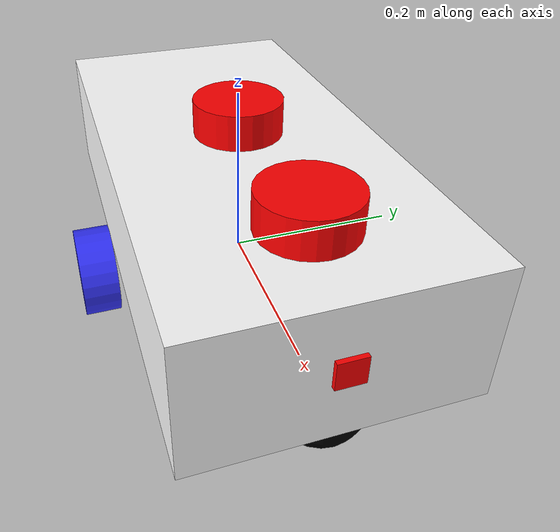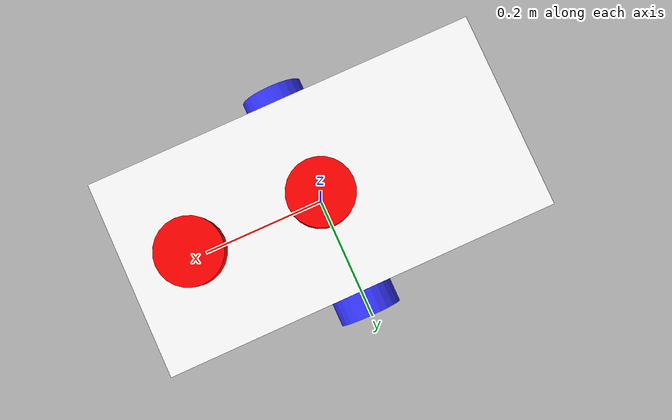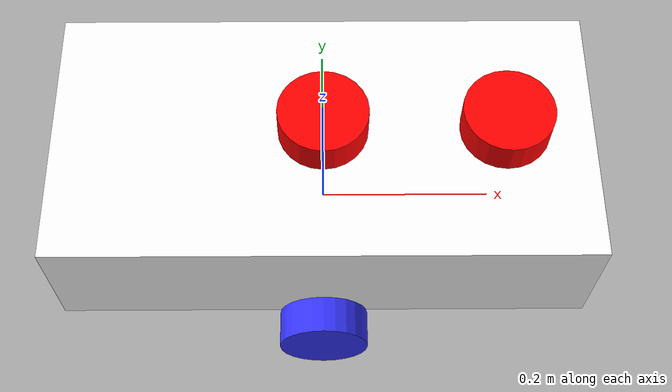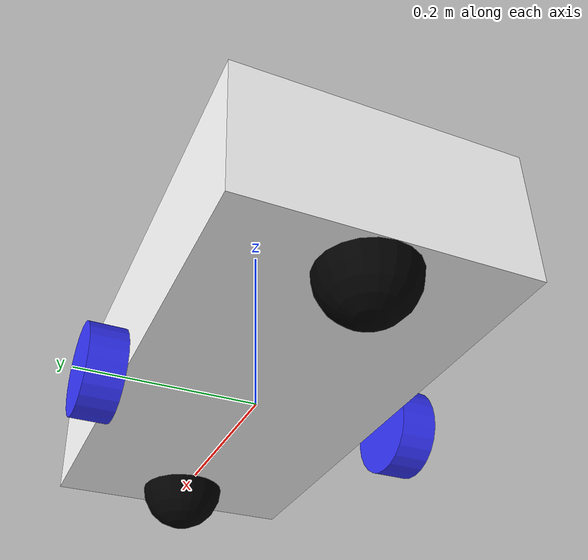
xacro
<?xml version="1.0"?>
<robot xmlns:xacro="http://www.ros.org/wiki/xacro"  name="robot">

    <xacro:include filename="robot_core.urdf.xacro"/>
    <xacro:include filename="gazebo_control.xacro"/>
    <xacro:include filename="camera.xacro"/>
    <xacro:include filename="lidar.xacro"/>
    <xacro:include filename="imu.xacro"/>

</robot>

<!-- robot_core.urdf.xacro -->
<robot xmlns:xacro="http://www.ros.org/wiki/xacro" >

    <xacro:include filename="inertial_macros.xacro"/>

    <material name="white">
        <color rgba="1 1 1 1" />
    </material>

    <material name="orange">
        <color rgba="1 0.3 0.1 1"/>
    </material>

    <material name="blue">
        <color rgba="0.2 0.2 1 1"/>
    </material>

    <material name="black">
        <color rgba="0 0 0 1"/>
    </material>

    <!-- BASE LINK -->

    <link name="base_link">

    </link>

    <!-- CHASSIS LINK -->

    <joint name="chassis_joint" type="fixed">
        <parent link="base_link"/>
        <child link="chassis"/>
        <origin xyz="-0.3 0 0"/>
    </joint>

    <link name="chassis">
        <visual>
            <origin xyz="0.3 0 0.075"/>
            <geometry>
                <box size="0.6 0.3 0.15"/>
            </geometry>
            <material name="white"/>
        </visual>
        <collision>
            <origin xyz="0.3 0 0.075"/>
            <geometry>
                <box size="0.6 0.3 0.15"/>
            </geometry>
        </collision>
        <xacro:inertial_box mass="5.5" x="0.6" y="0.3" z="0.15">
            <origin xyz="0.3 0 0.075" rpy="0 0 0"/>
        </xacro:inertial_box>
    </link>

    <gazebo reference="chassis">
        <material>Gazebo/White</material>
    </gazebo>
    <gazebo reference="left_wheel">
        <material>Gazebo/Red</material>
    </gazebo>
    <gazebo reference="right_wheel">
        <material>Gazebo/Red</material>
    </gazebo>

    <gazebo reference="caster_wheel">
        <material>Gazebo/Black</material>
        <mu1 value="1"/>
        <mu2 value="1"/>
    </gazebo>
    <!-- LEFT WHEEL LINK -->

    <joint name="left_wheel_joint" type="continuous">
        <parent link="base_link"/>
        <child link="left_wheel"/>
        <origin xyz="0 0.175 0" rpy="-${pi/2} 0 0" />
        <axis xyz="0 0 1"/>
    </joint>

    <link name="left_wheel">
        <visual>
            <geometry>
                <cylinder radius="0.05" length="0.04"/>
            </geometry>
            <material name="blue"/>
        </visual>
        <collision>
            <geometry>
                <cylinder radius="0.05" length="0.04"/>
            </geometry>
        </collision>
        <xacro:inertial_cylinder mass="0.1" length="0.04" radius="0.05">
            <origin xyz="0 0 0" rpy="0 0 0"/>
        </xacro:inertial_cylinder>
    </link>

    <!-- RIGHT WHEEL LINK -->

    <joint name="right_wheel_joint" type="continuous">
        <parent link="base_link"/>
        <child link="right_wheel"/>
        <origin xyz="0 -0.175 0" rpy="${pi/2} 0 0" />
        <axis xyz="0 0 -1"/>
    </joint>

    <link name="right_wheel">
        <visual>
            <geometry>
                <cylinder radius="0.05" length="0.04"/>
            </geometry>
            <material name="blue"/>
        </visual>
        <collision>
            <geometry>
                <cylinder radius="0.05" length="0.04"/>
            </geometry>
        </collision>
        <xacro:inertial_cylinder mass="0.1" length="0.04" radius="0.05">
            <origin xyz="0 0 0" rpy="0 0 0"/>
        </xacro:inertial_cylinder>
    </link>

    <!-- CASTER WHEEL LINK -->

    <joint name="caster_wheel_f_joint" type="continuous">
        <parent link="base_link"/>
        <child link="caster_wheel_f"/>
        <origin xyz="0.25 0 0.00001"/>
    </joint>

    <link name="caster_wheel_f">
        <surface>
            <contact>
                <ode>
                    <kp>10</kp> <!-- Stiffness (Spring Constant) -->
                    <kd>1</kd>     <!-- Damping -->
                </ode>
            </contact>
        </surface>

        <visual>
            <geometry>
                <sphere radius="0.05"/>
            </geometry>
            <material name="black"/>
        </visual>
        <collision>
            <geometry>
                <sphere radius="0.05"/>
            </geometry>
        </collision>
        <xacro:inertial_sphere mass="0.001" radius="0.05">
            <origin xyz="0 0 0" rpy="0 0 0"/>
        </xacro:inertial_sphere>
    </link>

    <joint name="caster_wheel_r_joint" type="continuous">
        <parent link="base_link"/>
        <child link="caster_wheel_r"/>
        <origin xyz="-0.25 0 0.00001"/>
    </joint>

    <link name="caster_wheel_r">
        <surface>
            <contact>
                <ode>
                    <kp>10</kp> <!-- Stiffness (Spring Constant) -->
                    <kd>1</kd>     <!-- Damping -->
                </ode>
            </contact>
        </surface>
        <visual>
            <geometry>
                <sphere radius="0.05"/>
            </geometry>
            <material name="black"/>
        </visual>
        <collision>
            <geometry>
                <sphere radius="0.05"/>
            </geometry>
        </collision>
        <xacro:inertial_sphere mass="0.001" radius="0.05">
            <origin xyz="0 0 0" rpy="0 0 0"/>
        </xacro:inertial_sphere>
    </link>

</robot>

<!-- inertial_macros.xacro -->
<robot xmlns:xacro="http://www.ros.org/wiki/xacro" >

    <!-- Specify some standard inertial calculations https://en.wikipedia.org/wiki/List_of_moments_of_inertia -->
    <!-- These make use of xacro's mathematical functionality -->

    <xacro:macro name="inertial_sphere" params="mass radius *origin">
        <inertial>
            <xacro:insert_block name="origin"/>
            <mass value="${mass}" />
            <inertia ixx="${(2/5) * mass * (radius*radius)}" ixy="0.0" ixz="0.0"
                    iyy="${(2/5) * mass * (radius*radius)}" iyz="0.0"
                    izz="${(2/5) * mass * (radius*radius)}" />
        </inertial>
    </xacro:macro>

    <xacro:macro name="inertial_box" params="mass x y z *origin">
        <inertial>
            <xacro:insert_block name="origin"/>
            <mass value="${mass}" />
            <inertia ixx="${(1/12) * mass * (y*y+z*z)}" ixy="0.0" ixz="0.0"
                    iyy="${(1/12) * mass * (x*x+z*z)}" iyz="0.0"
                    izz="${(1/12) * mass * (x*x+y*y)}" />
        </inertial>
    </xacro:macro>

    <xacro:macro name="inertial_cylinder" params="mass length radius *origin">
        <inertial>
            <xacro:insert_block name="origin"/>
            <mass value="${mass}" />
            <inertia ixx="${(1/12) * mass * (3*radius*radius + length*length)}" ixy="0.0" ixz="0.0"
                    iyy="${(1/12) * mass * (3*radius*radius + length*length)}" iyz="0.0"
                    izz="${(1/2) * mass * (radius*radius)}" />
        </inertial>
    </xacro:macro>

</robot>

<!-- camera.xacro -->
<robot xmlns:xacro="http://www.ros.org/wiki/xacro" >

    <joint name="camera_joint" type="fixed">
        <parent link="base_link"/>
        <child link="camera_link"/>
        <origin xyz="0.3 0 0.08" rpy="0 0 0"/>
    </joint>

    <link name="camera_link">
        <visual>
            <geometry>
                <box size="0.010 0.03 0.03"/>
            </geometry>
            <material name="red"/>
        </visual>
    </link>

    <joint name="camera_optical_joint" type="fixed">
        <parent link="camera_link"/>
        <child link="camera_link_optical"/>
        <origin xyz="0 0 0" rpy="${-pi/2} 0 ${-pi/2}"/>
    </joint>

    <link name="camera_link_optical"></link>

    <gazebo reference="camera_link">
        <material>Gazebo/Red</material>

        <sensor name="camera" type="camera">
            <pose> 0 0 0 0 0 0 </pose>
            <visualize>true</visualize>
            <update_rate>10</update_rate>
            <camera>
                <horizontal_fov>1.089</horizontal_fov>
                <image>
                    <format>R8G8B8</format>
                    <width>640</width>
                    <height>480</height>
                </image>
                <clip>
                    <near>0.05</near>
                    <far>8.0</far>
                </clip>
            </camera>
            <plugin name="camera_controller" filename="libgazebo_ros_camera.so">
                <frame_name>camera_link_optical</frame_name>
            </plugin>
        </sensor>
    </gazebo>

</robot>

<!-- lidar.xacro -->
<robot xmlns:xacro="http://www.ros.org/wiki/xacro" >

    <joint name="laser_joint" type="fixed">
        <parent link="base_link"/>
        <child link="laser_frame"/>
        <origin xyz="0.2 0 0.175" rpy="0 0 0"/>
    </joint>

    <link name="laser_frame">
        <visual>
            <geometry>
                <cylinder radius="0.05" length="0.04"/>
            </geometry>
            <material name="red"/>
        </visual>
        <collision>
            <geometry>
                <cylinder radius="0.05" length="0.04"/>
            </geometry>
        </collision>
        <xacro:inertial_cylinder mass="0.1" length="0.04" radius="0.05">
            <origin xyz="0 0 0" rpy="0 0 0"/>
        </xacro:inertial_cylinder>
    </link>

    <material name="red">
        <color rgba="1 0 0 1"/>
    </material>

    <gazebo reference="laser_frame">
        <material>Gazebo/Red</material>
        <sensor name="laser" type="ray">
            <pose> 0 0 0 0 0 0 </pose>
            <visualize>true</visualize>
            <update_rate>10</update_rate>
            <ray>
                <scan>
                    <horizontal>
                        <samples>360</samples>
                        <min_angle>-3.14</min_angle>
                        <max_angle>3.14</max_angle>
                    </horizontal>
                </scan>
                <range>
                    <min>0.3</min>
                    <max>12</max>
                </range>
            </ray>
            <plugin name="laser_controller" filename="libgazebo_ros_ray_sensor.so">
                <ros>
                    <argument>~/out:=scan</argument>
                </ros>
                <output_type>sensor_msgs/LaserScan</output_type>
                <frame_name>laser_frame</frame_name>
            </plugin>
        </sensor>
    </gazebo>
</robot>

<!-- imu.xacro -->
<robot xmlns:xacro="http://www.ros.org/wiki/xacro" >

    <joint name="imu_joint" type="fixed">
        <parent link="base_link"/>
        <child link="imu_link"/>
        <origin xyz="0.0 0 0.175" rpy="0 0 0"/>
    </joint>

    <link name="imu_link">
        <visual>
            <geometry>
                <cylinder radius="0.05" length="0.04"/>
            </geometry>
            <material name="red"/>
        </visual>
        <collision>
            <geometry>
                <cylinder radius="0.05" length="0.04"/>
            </geometry>
        </collision>
        <xacro:inertial_cylinder mass="0.1" length="0.04" radius="0.05">
            <origin xyz="0 0 0" rpy="0 0 0"/>
        </xacro:inertial_cylinder>
    </link>

    <gazebo reference="imu_link">
        <gravity>true</gravity>
        <sensor name="imu_sensor" type="imu">
            <always_on>true</always_on>
            <update_rate>10</update_rate>
            <visualize>true</visualize>
            <topic>__default_topic__</topic>
            <plugin filename="libgazebo_ros_imu_sensor.so" name="imu_plugin">
                <ros >
                    <remapping>~/out:=imu</remapping>
                </ros>
                <topicName>imu</topicName>
                <bodyName>imu_link</bodyName>
                <updateRateHZ>10.0</updateRateHZ>
                <gaussianNoise>0.005</gaussianNoise>
                <xyzOffset>0 0 0</xyzOffset>
                <rpyOffset>0 0 0</rpyOffset>
                <frame_name>imu_link</frame_name>
                <initialOrientationAsReference>false</initialOrientationAsReference>
            </plugin>
            <pose>0 0 0 0 0 0</pose>
            <imu>
                <angular_velocity>
                    <x>
                    <noise type="gaussian">
                        <mean>0.0</mean>
                        <stddev>2e-4</stddev>
                        <bias_mean>0.000000</bias_mean>
                        <bias_stddev>0.0000000</bias_stddev>
                    </noise>
                    </x>
                    <y>
                    <noise type="gaussian">
                        <mean>0.0</mean>
                        <stddev>2e-4</stddev>
                        <bias_mean>0.000000</bias_mean>
                        <bias_stddev>0.0000000</bias_stddev>
                    </noise>
                    </y>
                    <z>
                    <noise type="gaussian">
                        <mean>0.0</mean>
                        <stddev>2e-4</stddev>
                        <bias_mean>0.000000</bias_mean>
                        <bias_stddev>0.0000000</bias_stddev>
                    </noise>
                    </z>
                </angular_velocity>
                <linear_acceleration>
                    <x>
                    <noise type="gaussian">
                        <mean>0.0</mean>
                        <stddev>1.7e-2</stddev>
                        <bias_mean>0.0</bias_mean>
                        <bias_stddev>0.000</bias_stddev>
                    </noise>
                    </x>
                    <y>
                    <noise type="gaussian">
                        <mean>0.0</mean>
                        <stddev>1.7e-2</stddev>
                        <bias_mean>0.0</bias_mean>
                        <bias_stddev>0.000</bias_stddev>
                    </noise>
                    </y>
                    <z>
                    <noise type="gaussian">
                        <mean>0.0</mean>
                        <stddev>1.7e-2</stddev>
                        <bias_mean>0.0</bias_mean>
                        <bias_stddev>0.000</bias_stddev>
                    </noise>
                    </z>
                </linear_acceleration>
                </imu>
        </sensor>
    </gazebo>
</robot>
